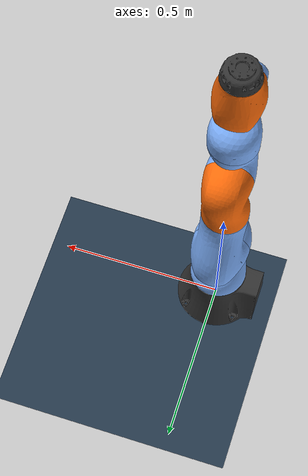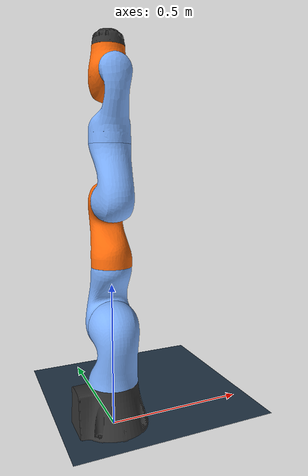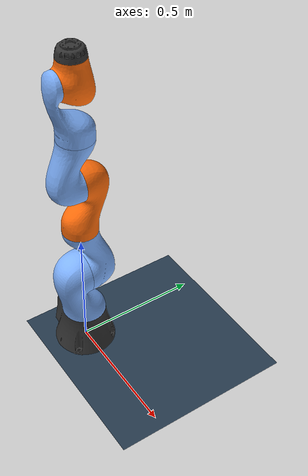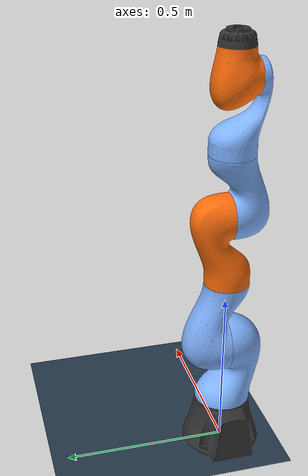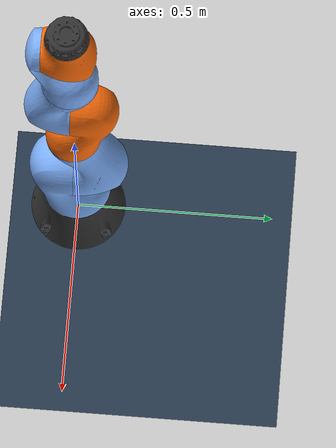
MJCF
<mujoco model="lbr_iiwa">
    <compiler angle="radian" meshdir='./kuka_iiwa/meshes/'/>
    <size njmax="500" nconmax="100" />
    <default>
         <geom margin='0.001' solref='0.002 1' solimp='0.8 0.8 0.1'/>
    </default>
    <asset>
        <mesh name="link_0" file="link_0.stl" />
        <mesh name="link_1" file="link_1.stl" />
        <mesh name="link_2" file="link_2.stl" />
        <mesh name="link_3" file="link_3.stl" />
        <mesh name="link_4" file="link_4.stl" />
        <mesh name="link_5" file="link_5.stl" />
        <mesh name="link_6" file="link_6.stl" />
        <mesh name="link_7" file="link_7.stl" />

        <texture name="texplane" type="2d" builtin="checker" rgb1=".2 .3 .4" rgb2=".1 0.15 0.2"
            width="512" height="512"/>

        <material name='MatPlane' reflectance='0.3' texture="texplane" texrepeat="1 1" texuniform="true"/>
    </asset>
    <worldbody>

        <!-- Floor -->
        <geom name='floor' pos='0 0 0' size='2 2 .01' type='plane' material="MatPlane" contype='4'/>
        <!-- Lighting -->
        <light directional='false' diffuse='.7 .7 .7' specular='0.03 0.03 0.03' pos='-1 -1.0 4.0' dir='1 1.0 -4'/>

        <!-- Robot -->

        <geom type="mesh" rgba="0.2 0.2 0.2 1" mesh="link_0" />
        <body name="lbr_iiwa_link_1" pos="0 0 0.1575">
            <inertial pos="0 -0.03 0.12" mass="4" diaginertia="0.1 0.09 0.02" />
            <joint name="lbr_iiwa_joint_1" pos="0 0 0" axis="0 0 1" limited="true" range="-2.96706 2.96706" damping="0.5" />
            <geom type="mesh" rgba="0.5 0.7 1 1" mesh="link_1" />
            <body name="lbr_iiwa_link_2" pos="0 0 0.2025" quat="0 0 0.707107 0.707107">
                <inertial pos="0.0003 0.059 0.042" quat="0.707107 0.707107 0 0" mass="4" diaginertia="0.05 0.044 0.018" />
                <joint name="lbr_iiwa_joint_2" pos="0 0 0" axis="0 0 1" limited="true" range="-2.0944 2.0944" damping="0.5" />
                <geom type="mesh" rgba="0.5 0.7 1 1" mesh="link_2" />
                <body name="lbr_iiwa_link_3" pos="0 0.2045 0" quat="0 0 0.707107 0.707107">
                    <inertial pos="0 0.03 0.13" mass="3" diaginertia="0.08 0.075 0.01" />
                    <joint name="lbr_iiwa_joint_3" pos="0 0 0" axis="0 0 1" limited="true" range="-2.96706 2.96706" damping="0.5" />
                    <geom type="mesh" rgba="1 0.423529 0.0392157 1" mesh="link_3" />
                    <body name="lbr_iiwa_link_4" pos="0 0 0.2155" quat="0.707107 0.707107 0 0">
                        <inertial pos="0 0.067 0.034" quat="0.707107 0.707107 0 0" mass="2.7" diaginertia="0.03 0.029 0.01" />
                        <joint name="lbr_iiwa_joint_4" pos="0 0 0" axis="0 0 1" limited="true" range="-2.0944 2.0944" damping="0.5" />
                        <geom type="mesh" rgba="0.5 0.7 1 1" mesh="link_4" />
                        <body name="lbr_iiwa_link_5" pos="0 0.1845 0" quat="0 0 0.707107 0.707107">
                            <inertial pos="0.0001 0.021 0.076" mass="1.7" diaginertia="0.02 0.018 0.005" />
                            <joint name="lbr_iiwa_joint_5" pos="0 0 0" axis="0 0 1" limited="true" range="-2.96706 2.96706" damping="0.5" />
                            <geom type="mesh" rgba="0.5 0.7 1 1" mesh="link_5" />
                            <body name="lbr_iiwa_link_6" pos="0 0 0.2155" quat="0.707107 0.707107 0 0">
                                <inertial pos="0 0.0006 0.0004" quat="0.707107 0.707107 0 0" mass="1.8" diaginertia="0.005 0.0047 0.0036" />
                                <joint name="lbr_iiwa_joint_6" pos="0 0 0" axis="0 0 1" limited="true" range="-2.0944 2.0944" damping="0.5" />
                                <geom type="mesh" rgba="1 0.423529 0.0392157 1" mesh="link_6" />
                                <body name="lbr_iiwa_link_7" pos="0 0.081 0" quat="0 0 0.707107 0.707107">
                                    <inertial pos="0 0 0.02" mass="0.3" diaginertia="0.001 0.001 0.001" />
                                    <joint name="lbr_iiwa_joint_7" pos="0 0 0" axis="0 0 1" limited="true" range="-3.05433 3.05433" damping="0.5" />
                                    <geom type="mesh" rgba="0.2 0.2 0.2 1" mesh="link_7" />
                                </body>
                            </body>
                        </body>
                    </body>
                </body>
            </body>
        </body>
    </worldbody>
</mujoco>
